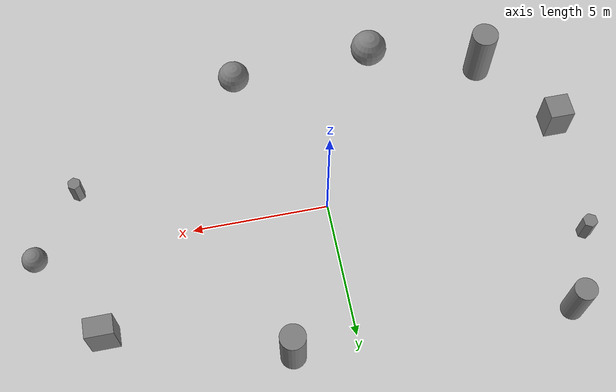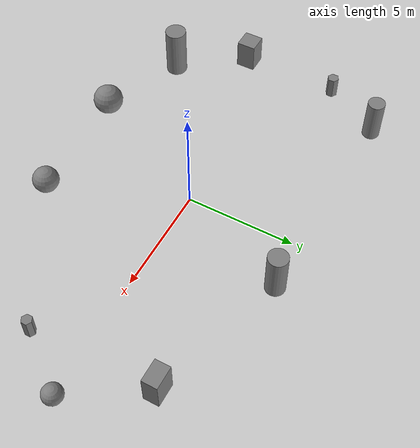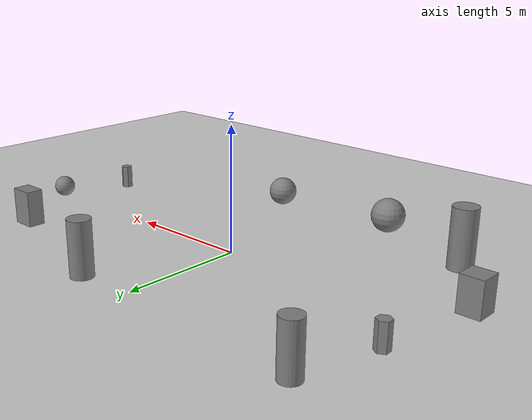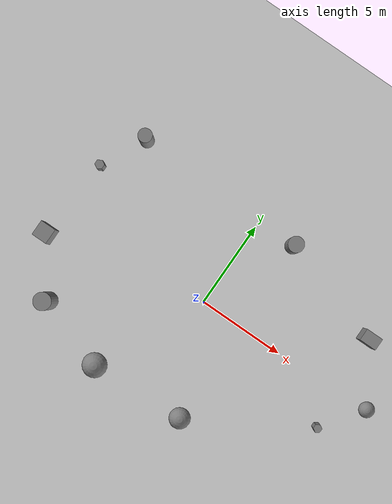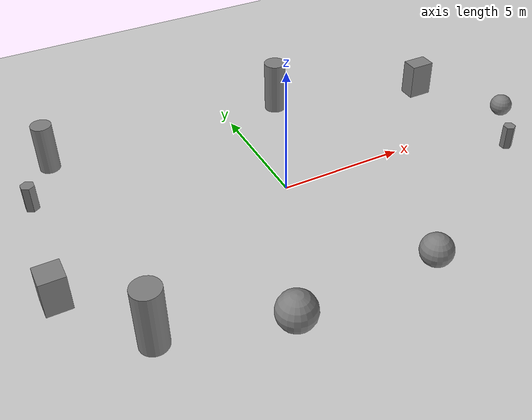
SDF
<?xml version="1.0"?>
<sdf version="1.6">
  <world name="ugv4_figure_eight_scout_obstacles">
    <physics name="ode" type="ode">
      <max_step_size>0.001</max_step_size>
      <real_time_update_rate>1000</real_time_update_rate>
    </physics>
    <include>
      <uri>model://sun</uri>
    </include>
    <include>
      <uri>model://ground_plane</uri>
    </include>
    <model name="xgc2_obstacle_w_post_a">
      <static>true</static>
      <pose relative_to="world">2.282343 5.314121 1.1 0.0 0.0 0.0</pose>
      <link name="body">
        <collision name="collision">
          <geometry>
            <cylinder>
              <radius>0.45</radius>
              <length>2.2</length>
            </cylinder>
          </geometry>
        </collision>
        <visual name="visual">
          <geometry>
            <cylinder>
              <radius>0.45</radius>
              <length>2.2</length>
            </cylinder>
          </geometry>
          <material>
            <ambient>0.5 0.5 0.5 1</ambient>
            <diffuse>0.5 0.5 0.5 1</diffuse>
          </material>
        </visual>
      </link>
    </model>
    <model name="xgc2_obstacle_w_slab_b">
      <static>true</static>
      <pose relative_to="world">8.518353 3.464294 0.75 0.0 0.0 0.0</pose>
      <link name="body">
        <collision name="collision">
          <geometry>
            <box>
              <size>1.0 0.7 1.5</size>
            </box>
          </geometry>
        </collision>
        <visual name="visual">
          <geometry>
            <box>
              <size>1.0 0.7 1.5</size>
            </box>
          </geometry>
          <material>
            <ambient>0.5 0.5 0.5 1</ambient>
            <diffuse>0.5 0.5 0.5 1</diffuse>
          </material>
        </visual>
      </link>
    </model>
    <model name="xgc2_obstacle_w_hex_c">
      <static>true</static>
      <pose relative_to="world">8.88982 -2.09948 0.8 0.0 0.0 0.0</pose>
      <link name="body">
        <collision name="collision">
          <geometry>
            <mesh>
              <uri>model://xgc2_convex_ugv_hexagon_1/meshes/ugv_hexagon_1.obj</uri>
              <scale>0.9 0.9 1.6</scale>
            </mesh>
          </geometry>
        </collision>
        <visual name="visual">
          <geometry>
            <mesh>
              <uri>model://xgc2_convex_ugv_hexagon_1/meshes/ugv_hexagon_1.obj</uri>
              <scale>0.9 0.9 1.6</scale>
            </mesh>
          </geometry>
          <material>
            <ambient>0.5 0.5 0.5 1</ambient>
            <diffuse>0.5 0.5 0.5 1</diffuse>
          </material>
        </visual>
      </link>
    </model>
    <model name="xgc2_obstacle_w_ball_d">
      <static>true</static>
      <pose relative_to="world">2.506088 -5.940403 0.6 0.0 0.0 0.0</pose>
      <link name="body">
        <collision name="collision">
          <geometry>
            <sphere>
              <radius>0.6</radius>
            </sphere>
          </geometry>
        </collision>
        <visual name="visual">
          <geometry>
            <sphere>
              <radius>0.6</radius>
            </sphere>
          </geometry>
          <material>
            <ambient>0.5 0.5 0.5 1</ambient>
            <diffuse>0.5 0.5 0.5 1</diffuse>
          </material>
        </visual>
      </link>
    </model>
    <model name="xgc2_obstacle_w_post_e">
      <static>true</static>
      <pose relative_to="world">-7.037301 -4.765353 1.2 0.0 0.0 0.0</pose>
      <link name="body">
        <collision name="collision">
          <geometry>
            <cylinder>
              <radius>0.5</radius>
              <length>2.4</length>
            </cylinder>
          </geometry>
        </collision>
        <visual name="visual">
          <geometry>
            <cylinder>
              <radius>0.5</radius>
              <length>2.4</length>
            </cylinder>
          </geometry>
          <material>
            <ambient>0.5 0.5 0.5 1</ambient>
            <diffuse>0.5 0.5 0.5 1</diffuse>
          </material>
        </visual>
      </link>
    </model>
    <model name="xgc2_obstacle_w_hex_f">
      <static>true</static>
      <pose relative_to="world">-8.814214 2.931122 0.85 0.0 0.0 0.0</pose>
      <link name="body">
        <collision name="collision">
          <geometry>
            <mesh>
              <uri>model://xgc2_convex_ugv_hexagon_1/meshes/ugv_hexagon_1.obj</uri>
              <scale>1.0 1.0 1.7</scale>
            </mesh>
          </geometry>
        </collision>
        <visual name="visual">
          <geometry>
            <mesh>
              <uri>model://xgc2_convex_ugv_hexagon_1/meshes/ugv_hexagon_1.obj</uri>
              <scale>1.0 1.0 1.7</scale>
            </mesh>
          </geometry>
          <material>
            <ambient>0.5 0.5 0.5 1</ambient>
            <diffuse>0.5 0.5 0.5 1</diffuse>
          </material>
        </visual>
      </link>
    </model>
    <model name="xgc2_obstacle_w_slab_g">
      <static>true</static>
      <pose relative_to="world">-9.215057 -1.76503 0.7 0.0 0.0 0.0</pose>
      <link name="body">
        <collision name="collision">
          <geometry>
            <box>
              <size>0.9 0.9 1.4</size>
            </box>
          </geometry>
        </collision>
        <visual name="visual">
          <geometry>
            <box>
              <size>0.9 0.9 1.4</size>
            </box>
          </geometry>
          <material>
            <ambient>0.5 0.5 0.5 1</ambient>
            <diffuse>0.5 0.5 0.5 1</diffuse>
          </material>
        </visual>
      </link>
    </model>
    <model name="xgc2_obstacle_w_ball_h">
      <static>true</static>
      <pose relative_to="world">-2.939313 -6.178353 0.7 0.0 0.0 0.0</pose>
      <link name="body">
        <collision name="collision">
          <geometry>
            <sphere>
              <radius>0.7</radius>
            </sphere>
          </geometry>
        </collision>
        <visual name="visual">
          <geometry>
            <sphere>
              <radius>0.7</radius>
            </sphere>
          </geometry>
          <material>
            <ambient>0.5 0.5 0.5 1</ambient>
            <diffuse>0.5 0.5 0.5 1</diffuse>
          </material>
        </visual>
      </link>
    </model>
    <model name="xgc2_obstacle_w_tip_r">
      <static>true</static>
      <pose relative_to="world">10.64787 0.212986 0.45 0.0 0.0 0.0</pose>
      <link name="body">
        <collision name="collision">
          <geometry>
            <sphere>
              <radius>0.45</radius>
            </sphere>
          </geometry>
        </collision>
        <visual name="visual">
          <geometry>
            <sphere>
              <radius>0.45</radius>
            </sphere>
          </geometry>
          <material>
            <ambient>0.5 0.5 0.5 1</ambient>
            <diffuse>0.5 0.5 0.5 1</diffuse>
          </material>
        </visual>
      </link>
    </model>
    <model name="xgc2_obstacle_w_tip_l">
      <static>true</static>
      <pose relative_to="world">-7.595459 5.537961 1.0 0.0 0.0 0.0</pose>
      <link name="body">
        <collision name="collision">
          <geometry>
            <cylinder>
              <radius>0.4</radius>
              <length>2.0</length>
            </cylinder>
          </geometry>
        </collision>
        <visual name="visual">
          <geometry>
            <cylinder>
              <radius>0.4</radius>
              <length>2.0</length>
            </cylinder>
          </geometry>
          <material>
            <ambient>0.5 0.5 0.5 1</ambient>
            <diffuse>0.5 0.5 0.5 1</diffuse>
          </material>
        </visual>
      </link>
    </model>
  </world>
</sdf>
